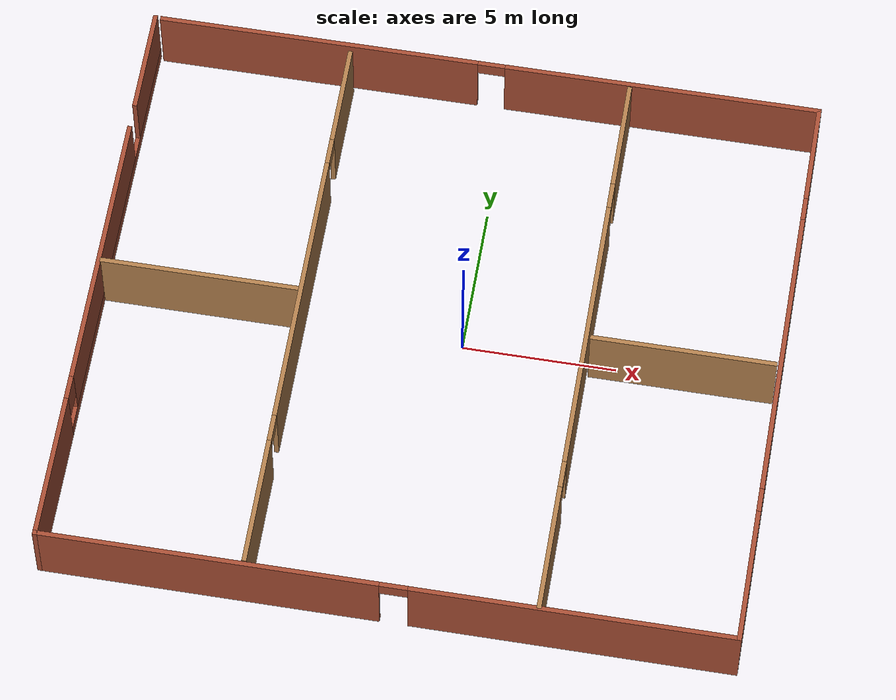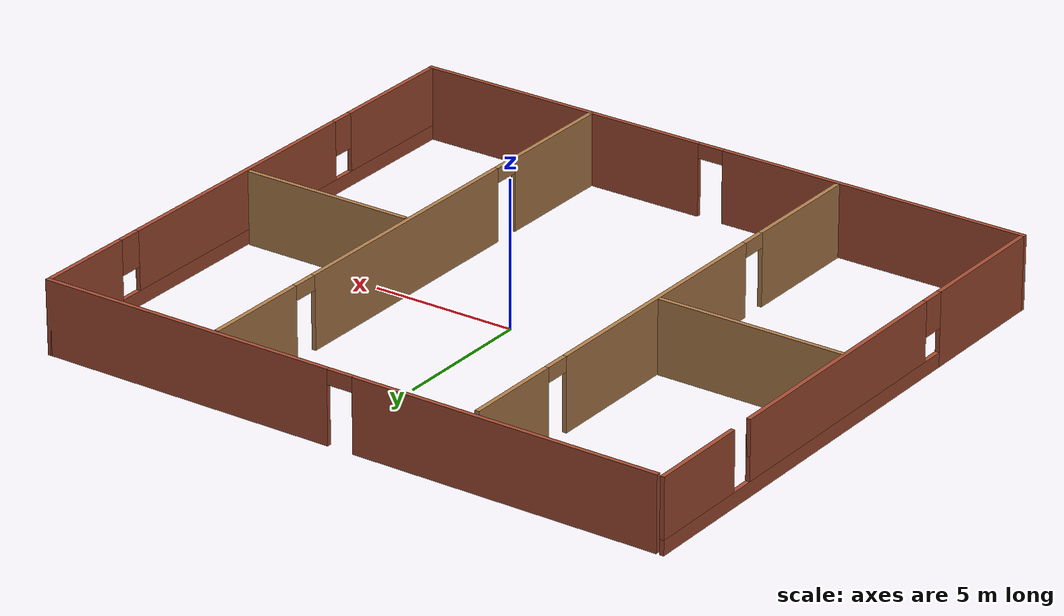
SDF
<?xml version='1.0'?>
<sdf version='1.7'>
  <model name='model'>
    <pose>-0.798323 -0.381591 0 0 -0 0</pose>
    <link name='Wall_10'>
      <pose>-11.05 -0 0 0 -0 1.5708</pose>
      <visual name='Wall_10_Visual_0'>
        <pose>-7.30499 0 1.25 0 -0 0</pose>
        <geometry>
          <box>
            <size>4.89003 0.15 2.5</size>
          </box>
        </geometry>
        <material>
          <script>
            <uri>file://media/materials/scripts/gazebo.material</uri>
            <name>Gazebo/Bricks</name>
          </script>
          <ambient>1 1 1 1</ambient>
        </material>
        <meta>
          <layer>0</layer>
        </meta>
      </visual>
      <collision name='Wall_10_Collision_0'>
        <geometry>
          <box>
            <size>4.89003 0.15 2.5</size>
          </box>
        </geometry>
        <pose>-7.30499 0 1.25 0 -0 0</pose>
      </collision>
      <visual name='Wall_10_Visual_1'>
        <pose>2.44502 0 0.25 0 -0 0</pose>
        <geometry>
          <box>
            <size>14.61 0.15 0.5</size>
          </box>
        </geometry>
        <material>
          <script>
            <uri>file://media/materials/scripts/gazebo.material</uri>
            <name>Gazebo/Bricks</name>
          </script>
          <ambient>1 1 1 1</ambient>
        </material>
        <meta>
          <layer>0</layer>
        </meta>
      </visual>
      <collision name='Wall_10_Collision_1'>
        <geometry>
          <box>
            <size>14.61 0.15 0.5</size>
          </box>
        </geometry>
        <pose>2.44502 0 0.25 0 -0 0</pose>
      </collision>
      <visual name='Wall_10_Visual_2'>
        <pose>0.662234 0 1.5 0 -0 0</pose>
        <geometry>
          <box>
            <size>9.44441 0.15 2</size>
          </box>
        </geometry>
        <material>
          <script>
            <uri>file://media/materials/scripts/gazebo.material</uri>
            <name>Gazebo/Bricks</name>
          </script>
          <ambient>1 1 1 1</ambient>
        </material>
        <meta>
          <layer>0</layer>
        </meta>
      </visual>
      <collision name='Wall_10_Collision_2'>
        <geometry>
          <box>
            <size>9.44441 0.15 2</size>
          </box>
        </geometry>
        <pose>0.662234 0 1.5 0 -0 0</pose>
      </collision>
      <visual name='Wall_10_Visual_3'>
        <pose>7.96722 0 1.5 0 -0 0</pose>
        <geometry>
          <box>
            <size>3.56556 0.15 2</size>
          </box>
        </geometry>
        <material>
          <script>
            <uri>file://media/materials/scripts/gazebo.material</uri>
            <name>Gazebo/Bricks</name>
          </script>
          <ambient>1 1 1 1</ambient>
        </material>
        <meta>
          <layer>0</layer>
        </meta>
      </visual>
      <collision name='Wall_10_Collision_3'>
        <geometry>
          <box>
            <size>3.56556 0.15 2</size>
          </box>
        </geometry>
        <pose>7.96722 0 1.5 0 -0 0</pose>
      </collision>
      <visual name='Wall_10_Visual_4'>
        <pose>-4.45997 0 1.9 0 -0 0</pose>
        <geometry>
          <box>
            <size>0.8 0.15 1.2</size>
          </box>
        </geometry>
        <material>
          <script>
            <uri>file://media/materials/scripts/gazebo.material</uri>
            <name>Gazebo/Bricks</name>
          </script>
          <ambient>1 1 1 1</ambient>
        </material>
        <meta>
          <layer>0</layer>
        </meta>
      </visual>
      <collision name='Wall_10_Collision_4'>
        <geometry>
          <box>
            <size>0.8 0.15 1.2</size>
          </box>
        </geometry>
        <pose>-4.45997 0 1.9 0 -0 0</pose>
      </collision>
      <visual name='Wall_10_Visual_5'>
        <pose>5.38444 0 1.9 0 -0 0</pose>
        <geometry>
          <box>
            <size>0 0.15 1.2</size>
          </box>
        </geometry>
        <material>
          <script>
            <uri>file://media/materials/scripts/gazebo.material</uri>
            <name>Gazebo/Bricks</name>
          </script>
          <ambient>1 1 1 1</ambient>
        </material>
        <meta>
          <layer>0</layer>
        </meta>
      </visual>
      <collision name='Wall_10_Collision_5'>
        <geometry>
          <box>
            <size>0 0.15 1.2</size>
          </box>
        </geometry>
        <pose>5.38444 0 1.9 0 -0 0</pose>
      </collision>
    </link>
    <link name='Wall_12'>
      <pose>-4.45591 -0.073522 0 0 -0 -1.5708</pose>
      <visual name='Wall_12_Visual_0'>
        <pose>-7.77425 0 1.25 0 -0 0</pose>
        <geometry>
          <box>
            <size>3.45151 0.15 2.5</size>
          </box>
        </geometry>
        <material>
          <script>
            <uri>file://media/materials/scripts/gazebo.material</uri>
            <name>Gazebo/Wood</name>
          </script>
          <ambient>1 1 1 1</ambient>
        </material>
        <meta>
          <layer>0</layer>
        </meta>
      </visual>
      <collision name='Wall_12_Collision_0'>
        <geometry>
          <box>
            <size>3.45151 0.15 2.5</size>
          </box>
        </geometry>
        <pose>-7.77425 0 1.25 0 -0 0</pose>
      </collision>
      <visual name='Wall_12_Visual_1'>
        <pose>-0.423973 0 1.25 0 -0 0</pose>
        <geometry>
          <box>
            <size>9.44904 0.15 2.5</size>
          </box>
        </geometry>
        <material>
          <script>
            <uri>file://media/materials/scripts/gazebo.material</uri>
            <name>Gazebo/Wood</name>
          </script>
          <ambient>1 1 1 1</ambient>
        </material>
        <meta>
          <layer>0</layer>
        </meta>
      </visual>
      <collision name='Wall_12_Collision_1'>
        <geometry>
          <box>
            <size>9.44904 0.15 2.5</size>
          </box>
        </geometry>
        <pose>-0.423973 0 1.25 0 -0 0</pose>
      </collision>
      <visual name='Wall_12_Visual_2'>
        <pose>7.35027 0 1.25 0 -0 0</pose>
        <geometry>
          <box>
            <size>4.29945 0.15 2.5</size>
          </box>
        </geometry>
        <material>
          <script>
            <uri>file://media/materials/scripts/gazebo.material</uri>
            <name>Gazebo/Wood</name>
          </script>
          <ambient>1 1 1 1</ambient>
        </material>
        <meta>
          <layer>0</layer>
        </meta>
      </visual>
      <collision name='Wall_12_Collision_2'>
        <geometry>
          <box>
            <size>4.29945 0.15 2.5</size>
          </box>
        </geometry>
        <pose>7.35027 0 1.25 0 -0 0</pose>
      </collision>
      <visual name='Wall_12_Visual_3'>
        <pose>-5.59849 0 2.25 0 -0 0</pose>
        <geometry>
          <box>
            <size>0.9 0.15 0.5</size>
          </box>
        </geometry>
        <material>
          <script>
            <uri>file://media/materials/scripts/gazebo.material</uri>
            <name>Gazebo/Wood</name>
          </script>
          <ambient>1 1 1 1</ambient>
        </material>
        <meta>
          <layer>0</layer>
        </meta>
      </visual>
      <collision name='Wall_12_Collision_3'>
        <geometry>
          <box>
            <size>0.9 0.15 0.5</size>
          </box>
        </geometry>
        <pose>-5.59849 0 2.25 0 -0 0</pose>
      </collision>
      <visual name='Wall_12_Visual_4'>
        <pose>4.75055 0 2.25 0 -0 0</pose>
        <geometry>
          <box>
            <size>0.9 0.15 0.5</size>
          </box>
        </geometry>
        <material>
          <script>
            <uri>file://media/materials/scripts/gazebo.material</uri>
            <name>Gazebo/Wood</name>
          </script>
          <ambient>1 1 1 1</ambient>
        </material>
        <meta>
          <layer>0</layer>
        </meta>
      </visual>
      <collision name='Wall_12_Collision_4'>
        <geometry>
          <box>
            <size>0.9 0.15 0.5</size>
          </box>
        </geometry>
        <pose>4.75055 0 2.25 0 -0 0</pose>
      </collision>
    </link>
    <link name='Wall_14'>
      <pose>4.81327 -0.057008 0 0 -0 -1.5708</pose>
      <visual name='Wall_14_Visual_0'>
        <pose>-7.74753 0 1.25 0 -0 0</pose>
        <geometry>
          <box>
            <size>3.75493 0.15 2.5</size>
          </box>
        </geometry>
        <material>
          <script>
            <uri>file://media/materials/scripts/gazebo.material</uri>
            <name>Gazebo/Wood</name>
          </script>
          <ambient>1 1 1 1</ambient>
        </material>
        <meta>
          <layer>0</layer>
        </meta>
      </visual>
      <collision name='Wall_14_Collision_0'>
        <geometry>
          <box>
            <size>3.75493 0.15 2.5</size>
          </box>
        </geometry>
        <pose>-7.74753 0 1.25 0 -0 0</pose>
      </collision>
      <visual name='Wall_14_Visual_1'>
        <pose>-0.265819 0 1.25 0 -0 0</pose>
        <geometry>
          <box>
            <size>9.4085 0.15 2.5</size>
          </box>
        </geometry>
        <material>
          <script>
            <uri>file://media/materials/scripts/gazebo.material</uri>
            <name>Gazebo/Wood</name>
          </script>
          <ambient>1 1 1 1</ambient>
        </material>
        <meta>
          <layer>0</layer>
        </meta>
      </visual>
      <collision name='Wall_14_Collision_1'>
        <geometry>
          <box>
            <size>9.4085 0.15 2.5</size>
          </box>
        </geometry>
        <pose>-0.265819 0 1.25 0 -0 0</pose>
      </collision>
      <visual name='Wall_14_Visual_2'>
        <pose>7.48172 0 1.25 0 -0 0</pose>
        <geometry>
          <box>
            <size>4.28657 0.15 2.5</size>
          </box>
        </geometry>
        <material>
          <script>
            <uri>file://media/materials/scripts/gazebo.material</uri>
            <name>Gazebo/Wood</name>
          </script>
          <ambient>1 1 1 1</ambient>
        </material>
        <meta>
          <layer>0</layer>
        </meta>
      </visual>
      <collision name='Wall_14_Collision_2'>
        <geometry>
          <box>
            <size>4.28657 0.15 2.5</size>
          </box>
        </geometry>
        <pose>7.48172 0 1.25 0 -0 0</pose>
      </collision>
      <visual name='Wall_14_Visual_3'>
        <pose>-5.42007 0 2.25 0 -0 0</pose>
        <geometry>
          <box>
            <size>0.9 0.15 0.5</size>
          </box>
        </geometry>
        <material>
          <script>
            <uri>file://media/materials/scripts/gazebo.material</uri>
            <name>Gazebo/Wood</name>
          </script>
          <ambient>1 1 1 1</ambient>
        </material>
        <meta>
          <layer>0</layer>
        </meta>
      </visual>
      <collision name='Wall_14_Collision_3'>
        <geometry>
          <box>
            <size>0.9 0.15 0.5</size>
          </box>
        </geometry>
        <pose>-5.42007 0 2.25 0 -0 0</pose>
      </collision>
      <visual name='Wall_14_Visual_4'>
        <pose>4.88843 0 2.25 0 -0 0</pose>
        <geometry>
          <box>
            <size>0.9 0.15 0.5</size>
          </box>
        </geometry>
        <material>
          <script>
            <uri>file://media/materials/scripts/gazebo.material</uri>
            <name>Gazebo/Wood</name>
          </script>
          <ambient>1 1 1 1</ambient>
        </material>
        <meta>
          <layer>0</layer>
        </meta>
      </visual>
      <collision name='Wall_14_Collision_4'>
        <geometry>
          <box>
            <size>0.9 0.15 0.5</size>
          </box>
        </geometry>
        <pose>4.88843 0 2.25 0 -0 0</pose>
      </collision>
    </link>
    <link name='Wall_16'>
      <collision name='Wall_16_Collision'>
        <geometry>
          <box>
            <size>6.5 0.15 2.5</size>
          </box>
        </geometry>
        <pose>0 0 1.25 0 -0 0</pose>
      </collision>
      <visual name='Wall_16_Visual'>
        <pose>0 0 1.25 0 -0 0</pose>
        <geometry>
          <box>
            <size>6.5 0.15 2.5</size>
          </box>
        </geometry>
        <material>
          <script>
            <uri>file://media/materials/scripts/gazebo.material</uri>
            <name>Gazebo/Wood</name>
          </script>
          <ambient>1 1 1 1</ambient>
        </material>
        <meta>
          <layer>0</layer>
        </meta>
      </visual>
      <pose>-7.75992 0.291635 0 0 -0 3.14159</pose>
    </link>
    <link name='Wall_18'>
      <collision name='Wall_18_Collision'>
        <geometry>
          <box>
            <size>6 0.15 2.5</size>
          </box>
        </geometry>
        <pose>0 0 1.25 0 -0 0</pose>
      </collision>
      <visual name='Wall_18_Visual'>
        <pose>0 0 1.25 0 -0 0</pose>
        <geometry>
          <box>
            <size>6 0.15 2.5</size>
          </box>
        </geometry>
        <material>
          <script>
            <uri>file://media/materials/scripts/gazebo.material</uri>
            <name>Gazebo/Wood</name>
          </script>
          <ambient>1 1 1 1</ambient>
        </material>
        <meta>
          <layer>0</layer>
        </meta>
      </visual>
      <pose>7.93778 0.066149 0 0 -0 0</pose>
    </link>
    <link name='Wall_6'>
      <pose>0.125 9.675 0 0 -0 0</pose>
      <visual name='Wall_6_Visual_0'>
        <pose>-5.68273 0 1.25 0 -0 0</pose>
        <geometry>
          <box>
            <size>10.6345 0.15 2.5</size>
          </box>
        </geometry>
        <material>
          <script>
            <uri>file://media/materials/scripts/gazebo.material</uri>
            <name>Gazebo/Bricks</name>
          </script>
          <ambient>1 1 1 1</ambient>
        </material>
        <meta>
          <layer>0</layer>
        </meta>
      </visual>
      <collision name='Wall_6_Collision_0'>
        <geometry>
          <box>
            <size>10.6345 0.15 2.5</size>
          </box>
        </geometry>
        <pose>-5.68273 0 1.25 0 -0 0</pose>
      </collision>
      <visual name='Wall_6_Visual_1'>
        <pose>5.76727 0 1.25 0 -0 0</pose>
        <geometry>
          <box>
            <size>10.4655 0.15 2.5</size>
          </box>
        </geometry>
        <material>
          <script>
            <uri>file://media/materials/scripts/gazebo.material</uri>
            <name>Gazebo/Bricks</name>
          </script>
          <ambient>1 1 1 1</ambient>
        </material>
        <meta>
          <layer>0</layer>
        </meta>
      </visual>
      <collision name='Wall_6_Collision_1'>
        <geometry>
          <box>
            <size>10.4655 0.15 2.5</size>
          </box>
        </geometry>
        <pose>5.76727 0 1.25 0 -0 0</pose>
      </collision>
      <visual name='Wall_6_Visual_2'>
        <pose>0.084541 0 2.25 0 -0 0</pose>
        <geometry>
          <box>
            <size>0.9 0.15 0.5</size>
          </box>
        </geometry>
        <material>
          <script>
            <uri>file://media/materials/scripts/gazebo.material</uri>
            <name>Gazebo/Bricks</name>
          </script>
          <ambient>1 1 1 1</ambient>
        </material>
        <meta>
          <layer>0</layer>
        </meta>
      </visual>
      <collision name='Wall_6_Collision_2'>
        <geometry>
          <box>
            <size>0.9 0.15 0.5</size>
          </box>
        </geometry>
        <pose>0.084541 0 2.25 0 -0 0</pose>
      </collision>
    </link>
    <link name='Wall_7'>
      <pose>11.05 -0 0 0 -0 -1.5708</pose>
      <visual name='Wall_7_Visual_0'>
        <pose>-8.02253 0 1.25 0 -0 0</pose>
        <geometry>
          <box>
            <size>3.45494 0.15 2.5</size>
          </box>
        </geometry>
        <material>
          <script>
            <uri>file://media/materials/scripts/gazebo.material</uri>
            <name>Gazebo/Bricks</name>
          </script>
          <ambient>1 1 1 1</ambient>
        </material>
        <meta>
          <layer>0</layer>
        </meta>
      </visual>
      <collision name='Wall_7_Collision_0'>
        <geometry>
          <box>
            <size>3.45494 0.15 2.5</size>
          </box>
        </geometry>
        <pose>-8.02253 0 1.25 0 -0 0</pose>
      </collision>
      <visual name='Wall_7_Visual_1'>
        <pose>1.72747 0 0.25 0 -0 0</pose>
        <geometry>
          <box>
            <size>16.0451 0.15 0.5</size>
          </box>
        </geometry>
        <material>
          <script>
            <uri>file://media/materials/scripts/gazebo.material</uri>
            <name>Gazebo/Bricks</name>
          </script>
          <ambient>1 1 1 1</ambient>
        </material>
        <meta>
          <layer>0</layer>
        </meta>
      </visual>
      <collision name='Wall_7_Collision_1'>
        <geometry>
          <box>
            <size>16.0451 0.15 0.5</size>
          </box>
        </geometry>
        <pose>1.72747 0 0.25 0 -0 0</pose>
      </collision>
      <visual name='Wall_7_Visual_2'>
        <pose>-0.535496 0 1.5 0 -0 0</pose>
        <geometry>
          <box>
            <size>9.91913 0.15 2</size>
          </box>
        </geometry>
        <material>
          <script>
            <uri>file://media/materials/scripts/gazebo.material</uri>
            <name>Gazebo/Bricks</name>
          </script>
          <ambient>1 1 1 1</ambient>
        </material>
        <meta>
          <layer>0</layer>
        </meta>
      </visual>
      <collision name='Wall_7_Collision_2'>
        <geometry>
          <box>
            <size>9.91913 0.15 2</size>
          </box>
        </geometry>
        <pose>-0.535496 0 1.5 0 -0 0</pose>
      </collision>
      <visual name='Wall_7_Visual_3'>
        <pose>7.48703 0 1.5 0 -0 0</pose>
        <geometry>
          <box>
            <size>4.52593 0.15 2</size>
          </box>
        </geometry>
        <material>
          <script>
            <uri>file://media/materials/scripts/gazebo.material</uri>
            <name>Gazebo/Bricks</name>
          </script>
          <ambient>1 1 1 1</ambient>
        </material>
        <meta>
          <layer>0</layer>
        </meta>
      </visual>
      <collision name='Wall_7_Collision_3'>
        <geometry>
          <box>
            <size>4.52593 0.15 2</size>
          </box>
        </geometry>
        <pose>7.48703 0 1.5 0 -0 0</pose>
      </collision>
      <visual name='Wall_7_Visual_4'>
        <pose>-5.89506 0 1.9 0 -0 0</pose>
        <geometry>
          <box>
            <size>0.8 0.15 1.2</size>
          </box>
        </geometry>
        <material>
          <script>
            <uri>file://media/materials/scripts/gazebo.material</uri>
            <name>Gazebo/Bricks</name>
          </script>
          <ambient>1 1 1 1</ambient>
        </material>
        <meta>
          <layer>0</layer>
        </meta>
      </visual>
      <collision name='Wall_7_Collision_4'>
        <geometry>
          <box>
            <size>0.8 0.15 1.2</size>
          </box>
        </geometry>
        <pose>-5.89506 0 1.9 0 -0 0</pose>
      </collision>
      <visual name='Wall_7_Visual_5'>
        <pose>4.82407 0 1.9 0 -0 0</pose>
        <geometry>
          <box>
            <size>0.8 0.15 1.2</size>
          </box>
        </geometry>
        <material>
          <script>
            <uri>file://media/materials/scripts/gazebo.material</uri>
            <name>Gazebo/Bricks</name>
          </script>
          <ambient>1 1 1 1</ambient>
        </material>
        <meta>
          <layer>0</layer>
        </meta>
      </visual>
      <collision name='Wall_7_Collision_5'>
        <geometry>
          <box>
            <size>0.8 0.15 1.2</size>
          </box>
        </geometry>
        <pose>4.82407 0 1.9 0 -0 0</pose>
      </collision>
    </link>
    <link name='Wall_8'>
      <pose>-0 -9.675 0 0 -0 3.14159</pose>
      <visual name='Wall_8_Visual_0'>
        <pose>-5.91945 0 1.25 0 -0 0</pose>
        <geometry>
          <box>
            <size>10.4111 0.15 2.5</size>
          </box>
        </geometry>
        <material>
          <script>
            <uri>file://media/materials/scripts/gazebo.material</uri>
            <name>Gazebo/Bricks</name>
          </script>
          <ambient>1 1 1 1</ambient>
        </material>
        <meta>
          <layer>0</layer>
        </meta>
      </visual>
      <collision name='Wall_8_Collision_0'>
        <geometry>
          <box>
            <size>10.4111 0.15 2.5</size>
          </box>
        </geometry>
        <pose>-5.91945 0 1.25 0 -0 0</pose>
      </collision>
      <visual name='Wall_8_Visual_1'>
        <pose>5.65555 0 1.25 0 -0 0</pose>
        <geometry>
          <box>
            <size>10.9389 0.15 2.5</size>
          </box>
        </geometry>
        <material>
          <script>
            <uri>file://media/materials/scripts/gazebo.material</uri>
            <name>Gazebo/Bricks</name>
          </script>
          <ambient>1 1 1 1</ambient>
        </material>
        <meta>
          <layer>0</layer>
        </meta>
      </visual>
      <collision name='Wall_8_Collision_1'>
        <geometry>
          <box>
            <size>10.9389 0.15 2.5</size>
          </box>
        </geometry>
        <pose>5.65555 0 1.25 0 -0 0</pose>
      </collision>
      <visual name='Wall_8_Visual_2'>
        <pose>-0.263894 0 2.25 0 -0 0</pose>
        <geometry>
          <box>
            <size>0.9 0.15 0.5</size>
          </box>
        </geometry>
        <material>
          <script>
            <uri>file://media/materials/scripts/gazebo.material</uri>
            <name>Gazebo/Bricks</name>
          </script>
          <ambient>1 1 1 1</ambient>
        </material>
        <meta>
          <layer>0</layer>
        </meta>
      </visual>
      <collision name='Wall_8_Collision_2'>
        <geometry>
          <box>
            <size>0.9 0.15 0.5</size>
          </box>
        </geometry>
        <pose>-0.263894 0 2.25 0 -0 0</pose>
      </collision>
    </link>
    <static>1</static>
  </model>
</sdf>
